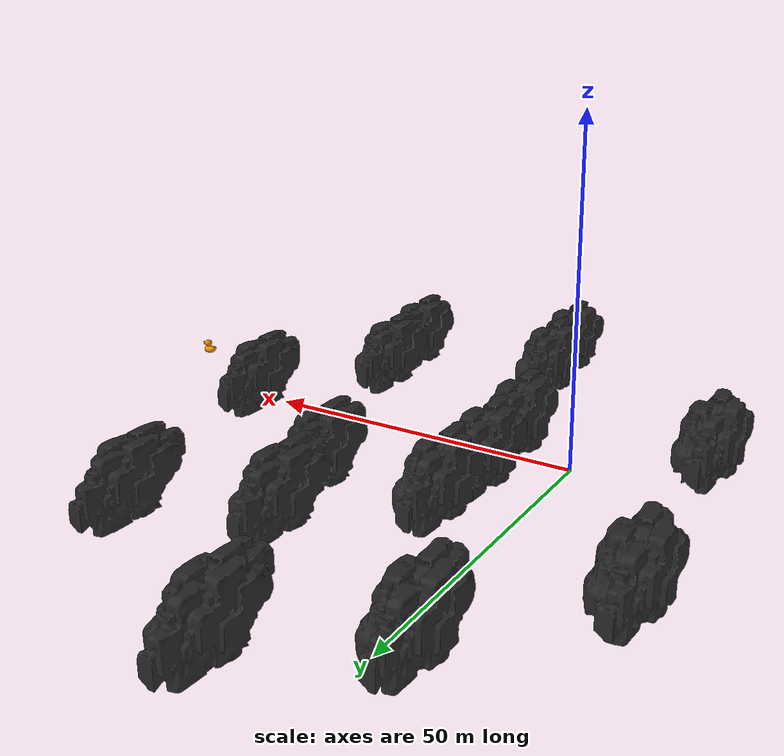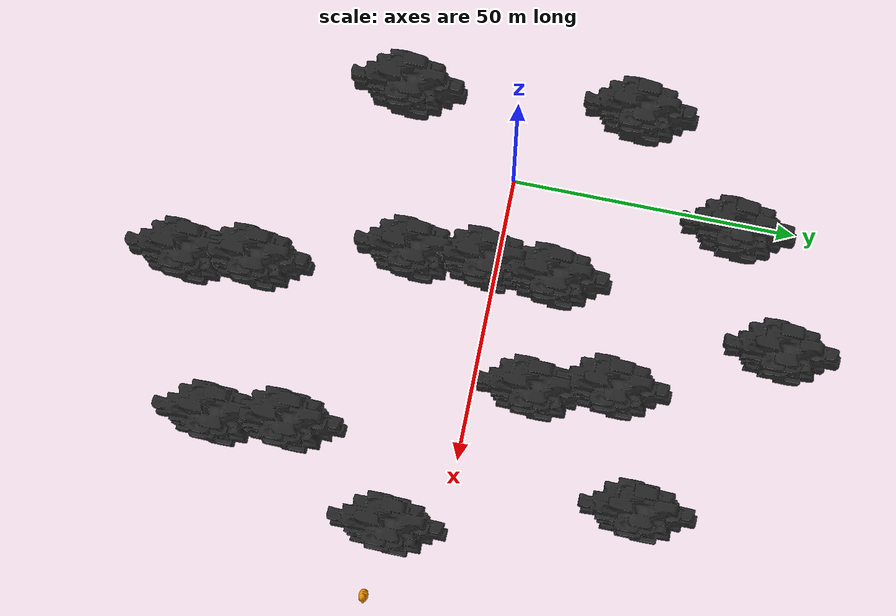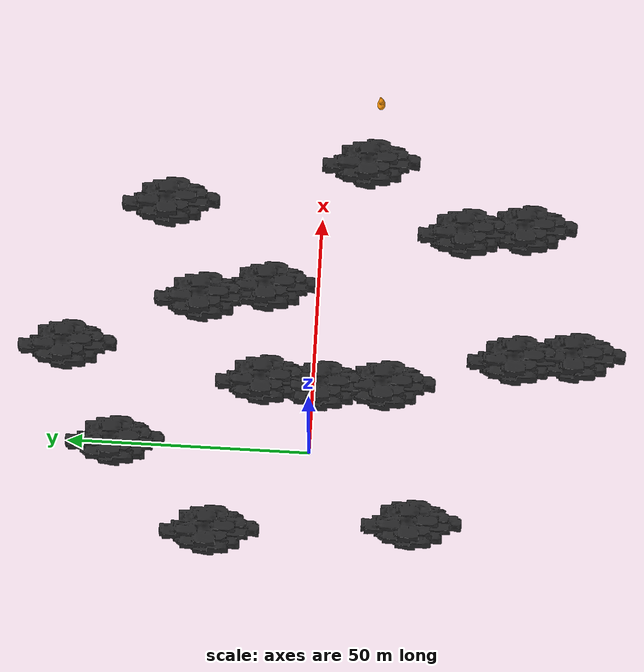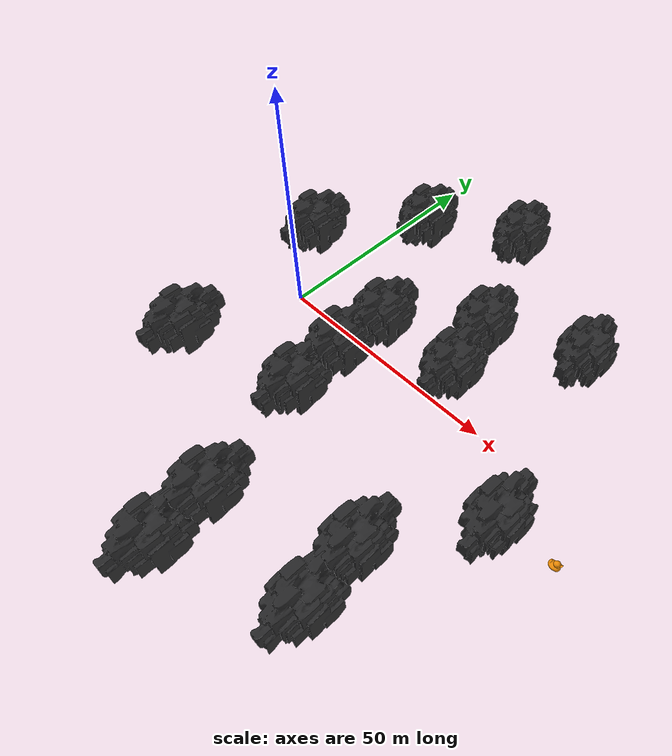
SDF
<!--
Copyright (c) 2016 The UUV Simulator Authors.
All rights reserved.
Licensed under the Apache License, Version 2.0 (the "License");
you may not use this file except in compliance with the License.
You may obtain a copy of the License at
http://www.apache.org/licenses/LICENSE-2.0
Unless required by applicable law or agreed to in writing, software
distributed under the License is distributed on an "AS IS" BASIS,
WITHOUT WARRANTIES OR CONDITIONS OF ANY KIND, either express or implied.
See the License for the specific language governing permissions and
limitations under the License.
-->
<sdf version="1.4">
 <world name="oceans_waves">
  <physics name="default_physics" default="true" type="ode">
   <max_step_size>0.002</max_step_size>
   <real_time_factor>1</real_time_factor>
   <real_time_update_rate>500</real_time_update_rate>
  </physics>
  <scene>
   <ambient>0.01 0.01 0.01 1.0</ambient>
   <sky><clouds><speed>12</speed></clouds></sky>
   <shadows>1</shadows>
  </scene>
  <spherical_coordinates>
   <latitude_deg>56.71897669633431</latitude_deg>
   <longitude_deg>3.515625</longitude_deg>
  </spherical_coordinates>
  <light type="directional" name="sun1">
   <pose>50 0 150 0 0 0</pose>
   <diffuse>1 1 1 1</diffuse>
   <specular>.1 .1 .1 1</specular>
   <direction>0.3 0.3 -1</direction>
   <cast_shadows>false</cast_shadows>
  </light>
  <light type="directional" name="sun_diffuse">
   <pose>-50 0 -150 0 0 0</pose>
   <diffuse>0.6 0.6 0.6 1</diffuse>
   <specular>0 0 0 1</specular>
   <direction>-0.3 -0.3 -1</direction>
   <cast_shadows>false</cast_shadows>
  </light>
  <plugin name="underwater_current_plugin" filename="libuuv_underwater_current_ros_plugin.so">
   <namespace>hydrodynamics</namespace>
   <constant_current>
    <topic>current_velocity</topic>
    <velocity><mean>0</mean><min>0</min><max>5</max><mu>0.0</mu><noiseAmp>0.0</noiseAmp></velocity>
    <horizontal_angle>
     <mean>0</mean>
     <min>-3.141592653589793238</min>
     <max>3.141592653589793238</max>
     <mu>0.0</mu>
     <noiseAmp>0.0</noiseAmp>
    </horizontal_angle>
    <vertical_angle>
     <mean>0</mean>
     <min>-3.141592653589793238</min>
     <max>3.141592653589793238</max>
     <mu>0.0</mu>
     <noiseAmp>0.0</noiseAmp>
    </vertical_angle>
   </constant_current>
  </plugin>
  <plugin name="sc_interface" filename="libuuv_sc_ros_interface_plugin.so"/>
  <model name="duck">
   <pose>75.566971 -11.053159 0.5 0 0 0</pose>
   <static>true</static>
   <link name="duck">
    <visual name="visual"><geometry><mesh><uri>model://duck.dae</uri></mesh></geometry></visual>
    <collision name="collision"><geometry><mesh><uri>model://duck.dae</uri></mesh></geometry></collision>
   </link>
  </model>
  <model name="rocks_1">
   <pose>13.591804 -1.615421 0 0 0 4.7</pose>
   <static>true</static>
   <link name="rocks_1">
    <visual name="visual"><geometry><mesh><uri>model://cliff_rocks.dae</uri></mesh></geometry></visual>
    <collision name="collision"><geometry><mesh><uri>model://cliff_rocks.dae</uri></mesh></geometry></collision>
   </link>
  </model>
  <model name="rocks_2">
   <pose>14.239582 10.455322 0 0 0 4.7</pose>
   <static>true</static>
   <link name="rocks_2">
    <visual name="visual"><geometry><mesh><uri>model://cliff_rocks.dae</uri></mesh></geometry></visual>
    <collision name="collision"><geometry><mesh><uri>model://cliff_rocks.dae</uri></mesh></geometry></collision>
   </link>
  </model>
  <model name="rocks_3">
   <pose>14.351398 -14.602087 0 0 0 4.7</pose>
   <static>true</static>
   <link name="rocks_3">
    <visual name="visual"><geometry><mesh><uri>model://cliff_rocks.dae</uri></mesh></geometry></visual>
    <collision name="collision"><geometry><mesh><uri>model://cliff_rocks.dae</uri></mesh></geometry></collision>
   </link>
  </model>
  <model name="rocks_4">
   <pose>34.265690 10.683140 0 0 0 4.7</pose>
   <static>true</static>
   <link name="rocks_4">
    <visual name="visual"><geometry><mesh><uri>model://cliff_rocks.dae</uri></mesh></geometry></visual>
    <collision name="collision"><geometry><mesh><uri>model://cliff_rocks.dae</uri></mesh></geometry></collision>
   </link>
  </model>
  <model name="rocks_5">
   <pose>-14.724283 -21.283300 0 0 0 4.7</pose>
   <static>true</static>
   <link name="rocks_5">
    <visual name="visual"><geometry><mesh><uri>model://cliff_rocks.dae</uri></mesh></geometry></visual>
    <collision name="collision"><geometry><mesh><uri>model://cliff_rocks.dae</uri></mesh></geometry></collision>
   </link>
  </model>
  <model name="rocks_6">
   <pose>-18.000000 20.000000 0 0 0 4.7</pose>
   <static>true</static>
   <link name="rocks_6">
    <visual name="visual"><geometry><mesh><uri>model://cliff_rocks.dae</uri></mesh></geometry></visual>
    <collision name="collision"><geometry><mesh><uri>model://cliff_rocks.dae</uri></mesh></geometry></collision>
   </link>
  </model>
  <model name="rocks_7">
   <pose>31.342571 24.251696 0 0 0 4.7</pose>
   <static>true</static>
   <link name="rocks_7">
    <visual name="visual"><geometry><mesh><uri>model://cliff_rocks.dae</uri></mesh></geometry></visual>
    <collision name="collision"><geometry><mesh><uri>model://cliff_rocks.dae</uri></mesh></geometry></collision>
   </link>
  </model>
  <model name="rocks_8">
   <pose>48.000000 -30.000000 0 0 0 4.7</pose>
   <static>true</static>
   <link name="rocks_8">
    <visual name="visual"><geometry><mesh><uri>model://cliff_rocks.dae</uri></mesh></geometry></visual>
    <collision name="collision"><geometry><mesh><uri>model://cliff_rocks.dae</uri></mesh></geometry></collision>
   </link>
  </model>
  <model name="rocks_9">
   <pose>49.361488 -42.585499 0 0 0 4.7</pose>
   <static>true</static>
   <link name="rocks_9">
    <visual name="visual"><geometry><mesh><uri>model://cliff_rocks.dae</uri></mesh></geometry></visual>
    <collision name="collision"><geometry><mesh><uri>model://cliff_rocks.dae</uri></mesh></geometry></collision>
   </link>
  </model>
  <model name="rocks_10">
   <pose>51.557194 32.292305 0 0 0 4.7</pose>
   <static>true</static>
   <link name="rocks_10">
    <visual name="visual"><geometry><mesh><uri>model://cliff_rocks.dae</uri></mesh></geometry></visual>
    <collision name="collision"><geometry><mesh><uri>model://cliff_rocks.dae</uri></mesh></geometry></collision>
   </link>
  </model>
  <model name="rocks_11">
   <pose>19.583100 51.830500 0 0 0 4.7</pose>
   <static>true</static>
   <link name="rocks_11">
    <visual name="visual"><geometry><mesh><uri>model://cliff_rocks.dae</uri></mesh></geometry></visual>
    <collision name="collision"><geometry><mesh><uri>model://cliff_rocks.dae</uri></mesh></geometry></collision>
   </link>
  </model>
  <model name="rocks_12">
   <pose>-0.299741 40.586400 0 0 0 4.7</pose>
   <static>true</static>
   <link name="rocks_12">
    <visual name="visual"><geometry><mesh><uri>model://cliff_rocks.dae</uri></mesh></geometry></visual>
    <collision name="collision"><geometry><mesh><uri>model://cliff_rocks.dae</uri></mesh></geometry></collision>
   </link>
  </model>
  <model name="rocks_13">
   <pose>62.104600 -9.223580 0 0 0 4.7</pose>
   <static>true</static>
   <link name="rocks_13">
    <visual name="visual"><geometry><mesh><uri>model://cliff_rocks.dae</uri></mesh></geometry></visual>
    <collision name="collision"><geometry><mesh><uri>model://cliff_rocks.dae</uri></mesh></geometry></collision>
   </link>
  </model>
  <model name="rocks_14">
   <pose>21.181600 -41.546000 0 0 0 4.7</pose>
   <static>true</static>
   <link name="rocks_14">
    <visual name="visual"><geometry><mesh><uri>model://cliff_rocks.dae</uri></mesh></geometry></visual>
    <collision name="collision"><geometry><mesh><uri>model://cliff_rocks.dae</uri></mesh></geometry></collision>
   </link>
  </model>
  <model name="rocks_15">
   <pose>22.379000 -53.562900 0 0 0 4.7</pose>
   <static>true</static>
   <link name="rocks_15">
    <visual name="visual"><geometry><mesh><uri>model://cliff_rocks.dae</uri></mesh></geometry></visual>
    <collision name="collision"><geometry><mesh><uri>model://cliff_rocks.dae</uri></mesh></geometry></collision>
   </link>
  </model>
 </world>
</sdf>
